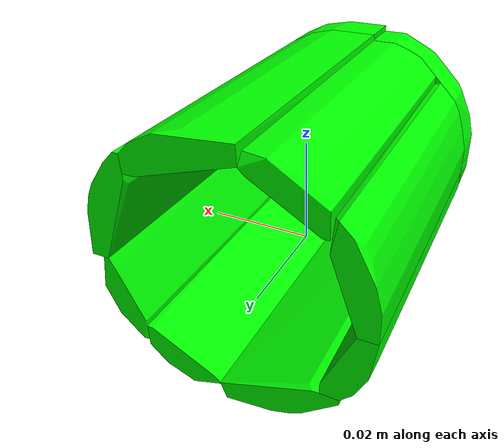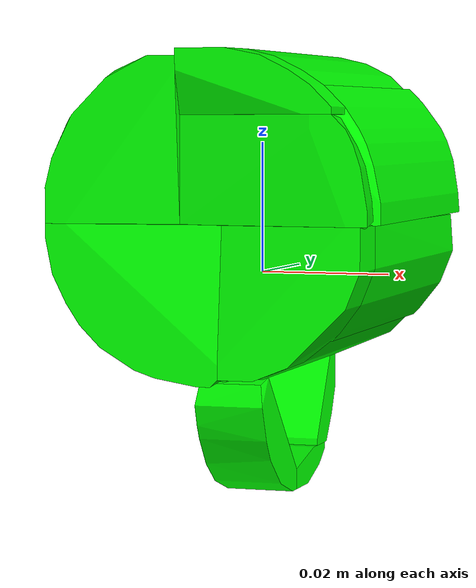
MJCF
<mujoco model="shapenet9-30">
  <asset>
    <mesh file="meshes/shapenet9-30/shapenet9-30_0.stl" name="shapenet9-30_0" scale="0.1 0.1 0.1"/>
    <mesh file="meshes/shapenet9-30/shapenet9-30_1.stl" name="shapenet9-30_1" scale="0.1 0.1 0.1"/>
    <mesh file="meshes/shapenet9-30/shapenet9-30_2.stl" name="shapenet9-30_2" scale="0.1 0.1 0.1"/>
    <mesh file="meshes/shapenet9-30/shapenet9-30_3.stl" name="shapenet9-30_3" scale="0.1 0.1 0.1"/>
    <mesh file="meshes/shapenet9-30/shapenet9-30_4.stl" name="shapenet9-30_4" scale="0.1 0.1 0.1"/>
    <mesh file="meshes/shapenet9-30/shapenet9-30_5.stl" name="shapenet9-30_5" scale="0.1 0.1 0.1"/>
    <mesh file="meshes/shapenet9-30/shapenet9-30_6.stl" name="shapenet9-30_6" scale="0.1 0.1 0.1"/>
    <mesh file="meshes/shapenet9-30/shapenet9-30_7.stl" name="shapenet9-30_7" scale="0.1 0.1 0.1"/>
    <mesh file="meshes/shapenet9-30/shapenet9-30_8.stl" name="shapenet9-30_8" scale="0.1 0.1 0.1"/>
    <mesh file="meshes/shapenet9-30/shapenet9-30_9.stl" name="shapenet9-30_9" scale="0.1 0.1 0.1"/>
    <mesh file="meshes/shapenet9-30/shapenet9-30_10.stl" name="shapenet9-30_10" scale="0.1 0.1 0.1"/>
    <mesh file="meshes/shapenet9-30/shapenet9-30_11.stl" name="shapenet9-30_11" scale="0.1 0.1 0.1"/>
    <mesh file="meshes/shapenet9-30/shapenet9-30_12.stl" name="shapenet9-30_12" scale="0.1 0.1 0.1"/>
    <mesh file="meshes/shapenet9-30/shapenet9-30_13.stl" name="shapenet9-30_13" scale="0.1 0.1 0.1"/>
    <mesh file="meshes/shapenet9-30/shapenet9-30_14.stl" name="shapenet9-30_14" scale="0.1 0.1 0.1"/>
    <mesh file="meshes/shapenet9-30/shapenet9-30_15.stl" name="shapenet9-30_15" scale="0.1 0.1 0.1"/>
  </asset>
  <worldbody>
    <body>
      <body name="collision">
        <geom pos="0 0 0" mesh="shapenet9-30_0" type="mesh" solimp="0.998 0.998 0.001" solref="0.001 1" density="100" friction="0.95 0.3 0.1" rgba="0 1 0 1" group="1" condim="4"/>
        <geom pos="0 0 0" mesh="shapenet9-30_1" type="mesh" solimp="0.998 0.998 0.001" solref="0.001 1" density="100" friction="0.95 0.3 0.1" rgba="0 1 0 1" group="1" condim="4"/>
        <geom pos="0 0 0" mesh="shapenet9-30_2" type="mesh" solimp="0.998 0.998 0.001" solref="0.001 1" density="100" friction="0.95 0.3 0.1" rgba="0 1 0 1" group="1" condim="4"/>
        <geom pos="0 0 0" mesh="shapenet9-30_3" type="mesh" solimp="0.998 0.998 0.001" solref="0.001 1" density="100" friction="0.95 0.3 0.1" rgba="0 1 0 1" group="1" condim="4"/>
        <geom pos="0 0 0" mesh="shapenet9-30_4" type="mesh" solimp="0.998 0.998 0.001" solref="0.001 1" density="100" friction="0.95 0.3 0.1" rgba="0 1 0 1" group="1" condim="4"/>
        <geom pos="0 0 0" mesh="shapenet9-30_5" type="mesh" solimp="0.998 0.998 0.001" solref="0.001 1" density="100" friction="0.95 0.3 0.1" rgba="0 1 0 1" group="1" condim="4"/>
        <geom pos="0 0 0" mesh="shapenet9-30_6" type="mesh" solimp="0.998 0.998 0.001" solref="0.001 1" density="100" friction="0.95 0.3 0.1" rgba="0 1 0 1" group="1" condim="4"/>
        <geom pos="0 0 0" mesh="shapenet9-30_7" type="mesh" solimp="0.998 0.998 0.001" solref="0.001 1" density="100" friction="0.95 0.3 0.1" rgba="0 1 0 1" group="1" condim="4"/>
        <geom pos="0 0 0" mesh="shapenet9-30_8" type="mesh" solimp="0.998 0.998 0.001" solref="0.001 1" density="100" friction="0.95 0.3 0.1" rgba="0 1 0 1" group="1" condim="4"/>
        <geom pos="0 0 0" mesh="shapenet9-30_9" type="mesh" solimp="0.998 0.998 0.001" solref="0.001 1" density="100" friction="0.95 0.3 0.1" rgba="0 1 0 1" group="1" condim="4"/>
        <geom pos="0 0 0" mesh="shapenet9-30_10" type="mesh" solimp="0.998 0.998 0.001" solref="0.001 1" density="100" friction="0.95 0.3 0.1" rgba="0 1 0 1" group="1" condim="4"/>
        <geom pos="0 0 0" mesh="shapenet9-30_11" type="mesh" solimp="0.998 0.998 0.001" solref="0.001 1" density="100" friction="0.95 0.3 0.1" rgba="0 1 0 1" group="1" condim="4"/>
        <geom pos="0 0 0" mesh="shapenet9-30_12" type="mesh" solimp="0.998 0.998 0.001" solref="0.001 1" density="100" friction="0.95 0.3 0.1" rgba="0 1 0 1" group="1" condim="4"/>
        <geom pos="0 0 0" mesh="shapenet9-30_13" type="mesh" solimp="0.998 0.998 0.001" solref="0.001 1" density="100" friction="0.95 0.3 0.1" rgba="0 1 0 1" group="1" condim="4"/>
        <geom pos="0 0 0" mesh="shapenet9-30_14" type="mesh" solimp="0.998 0.998 0.001" solref="0.001 1" density="100" friction="0.95 0.3 0.1" rgba="0 1 0 1" group="1" condim="4"/>
        <geom pos="0 0 0" mesh="shapenet9-30_15" type="mesh" solimp="0.998 0.998 0.001" solref="0.001 1" density="100" friction="0.95 0.3 0.1" rgba="0 1 0 1" group="1" condim="4"/>
      </body>
      <body name="visual">
        <geom pos="0 0 0" mesh="shapenet9-30_0" type="mesh" rgba="0 1 0 1" conaffinity="0" contype="0" group="0" mass="0.0001"/>
        <geom pos="0 0 0" mesh="shapenet9-30_1" type="mesh" rgba="0 1 0 1" conaffinity="0" contype="0" group="0" mass="0.0001"/>
        <geom pos="0 0 0" mesh="shapenet9-30_2" type="mesh" rgba="0 1 0 1" conaffinity="0" contype="0" group="0" mass="0.0001"/>
        <geom pos="0 0 0" mesh="shapenet9-30_3" type="mesh" rgba="0 1 0 1" conaffinity="0" contype="0" group="0" mass="0.0001"/>
        <geom pos="0 0 0" mesh="shapenet9-30_4" type="mesh" rgba="0 1 0 1" conaffinity="0" contype="0" group="0" mass="0.0001"/>
        <geom pos="0 0 0" mesh="shapenet9-30_5" type="mesh" rgba="0 1 0 1" conaffinity="0" contype="0" group="0" mass="0.0001"/>
        <geom pos="0 0 0" mesh="shapenet9-30_6" type="mesh" rgba="0 1 0 1" conaffinity="0" contype="0" group="0" mass="0.0001"/>
        <geom pos="0 0 0" mesh="shapenet9-30_7" type="mesh" rgba="0 1 0 1" conaffinity="0" contype="0" group="0" mass="0.0001"/>
        <geom pos="0 0 0" mesh="shapenet9-30_8" type="mesh" rgba="0 1 0 1" conaffinity="0" contype="0" group="0" mass="0.0001"/>
        <geom pos="0 0 0" mesh="shapenet9-30_9" type="mesh" rgba="0 1 0 1" conaffinity="0" contype="0" group="0" mass="0.0001"/>
        <geom pos="0 0 0" mesh="shapenet9-30_10" type="mesh" rgba="0 1 0 1" conaffinity="0" contype="0" group="0" mass="0.0001"/>
        <geom pos="0 0 0" mesh="shapenet9-30_11" type="mesh" rgba="0 1 0 1" conaffinity="0" contype="0" group="0" mass="0.0001"/>
        <geom pos="0 0 0" mesh="shapenet9-30_12" type="mesh" rgba="0 1 0 1" conaffinity="0" contype="0" group="0" mass="0.0001"/>
        <geom pos="0 0 0" mesh="shapenet9-30_13" type="mesh" rgba="0 1 0 1" conaffinity="0" contype="0" group="0" mass="0.0001"/>
        <geom pos="0 0 0" mesh="shapenet9-30_14" type="mesh" rgba="0 1 0 1" conaffinity="0" contype="0" group="0" mass="0.0001"/>
        <geom pos="0 0 0" mesh="shapenet9-30_15" type="mesh" rgba="0 1 0 1" conaffinity="0" contype="0" group="0" mass="0.0001"/>
      </body>
      <site rgba="0 0 0 0" size="0.005" pos="0 0 -0.06" name="bottom_site"/>
      <site rgba="0 0 0 0" size="0.005" pos="0 0 0.04" name="top_site"/>
      <site rgba="0 0 0 0" size="0.005" pos="0.025 0.025 0" name="horizontal_radius_site"/>
    </body>
  </worldbody>
</mujoco>
